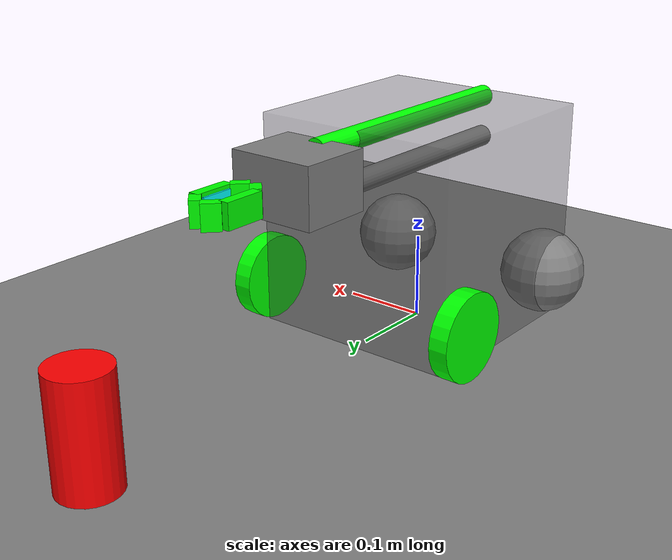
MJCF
<mujoco model="robot">
    <option timestep="0.01" gravity="0 0 -9.81"/>

    <worldbody>
        <!-- Light Source -->
        <light diffuse="0.5 0.5 0.5" pos="0 0 3" dir="0 0 -1"/>

        <!-- Ground Plane -->
        <geom name="ground" type="plane" size="10 10 0.1" contype="1" conaffinity="7" />

        <!-- Main box (chassis) -->
        <!-- pos=0 0 5.125 -->
        <body name="chassis" pos="0 0 0.130175">
            <joint type="free"/> <!-- allow free motion around the plane -->

            <!-- size=5 5 5.125 mass=4.5 -->
            <geom type="box" size="0.127 0.127 0.127"
                rgba="0.3 0.3 0.3 0.4" mass="7" condim="3" contype="2" conaffinity="9"/>

            <!-- Front Left Wheel -->
            <body name="wheel_fl" pos="-0.1397 0.10795 -0.079375">
                <joint name="joint_fl" type="hinge" axis="-1 0 0" damping="1"/>
                <!-- size=2 .44 fromto=5.06 4.25 -3.125 5.94 4.25 -3.125 -->
                <geom type="cylinder" size="0.0508 0.011176"
                    fromto="0.011176 0 0 -0.011176 0 0"
                    rgba="0 1 0 1" mass="1.125" condim="3" contype="1" conaffinity="1"/>
            </body>

            <!-- Front Right Wheel -->
            <body name="wheel_fr" pos="0.1397 0.10795 -0.079375">
                <joint name="joint_fr" type="hinge" axis="-1 0 0" damping="1"/>
                <geom type="cylinder" size="0.0508 0.011176"
                    fromto="-0.011176 0 0 0.011176 0 0"
                    rgba="0 1 0 1" mass="1.125" condim="3" contype="1" conaffinity="1"/>
            </body>

            <!-- Rear Left Wheel -->
            <!-- x position has been adjusted to compensate for the ball joint collision -->
            <body name="wheel_rl" pos="-0.11 -0.10795 -0.079375">
                <joint name="joint_rl" type="ball"/>
                <geom type="sphere" size="0.0508"
                    rgba="0.5 0.5 0.5 1" mass="1.125" friction="0 0 0" condim="3" contype="1" conaffinity="1"/>
            </body>

            <!-- Rear Right Wheel -->
            <body name="wheel_rr" pos="0.11 -0.10795 -0.079375">
                <joint name="joint_rr" type="ball"/>
                <geom type="sphere" size="0.0508"
                    rgba="0.5 0.5 0.5 1" mass="1.125" friction="0 0 0" condim="3" contype="1" conaffinity="1"/>
            </body>

            <!-- Top Arm -->
            <body name="arm1" pos="0 0.0254 0.117475">
                <joint name="joint_arm1" type="hinge" axis="1 0 0"
                    pos="0 -0.1397 0" damping="0.5"/>
                <geom type="cylinder" fromto="0 -0.15875 0 0 0.15875 0"
                    size="0.0127 0.15875" rgba="0 1 0 1" mass="0.1" condim="3" contype="2" conaffinity="2"/>

                <!-- Claw -->
                <body name="claw_base" pos="0 0.1863725 -0.0254">
                    <joint name="joint_cb_arm1" type="hinge" axis="1 0 0" pos="0 -0.0339725 0.0254"/>
                    <site name="mate_cb_arm2" pos="0 -0.0339725 -0.0254"/>
                    <site name="virtual_claw_target" pos="0 0.103 0"/>
                    <geom type="box" size="0.0508 0.0422275 0.033655" rgba="0.5 0.5 0.5 1" mass="0.5"
                        condim="3" contype="4" conaffinity="5"/>

                    <!-- Left effector -->
                    <body name="left_claw" pos="-0.035 0.0356235 0">
                        <joint name="joint_left_claw" type="hinge" axis="0 0 -1" range="-90 0" frictionloss="0.1"/>
                        <geom type="box" size="0.006 0.01 0.014" pos="0.024638 0.0373 0" euler="0 0 45" rgba="0 1 0 1" mass="0.02" condim="3" contype="2" conaffinity="1"/>
                        <geom type="box" size="0.006 0.023 0.014" pos="0.015638 0.0673 0" rgba="0 1 0 1" mass="0.04" condim="3" contype="2" conaffinity="1"/>
                        <geom type="box" size="0.006 0.01 0.014" pos="0.024638 0.0973 0" euler="0 0 -45" rgba="0 1 0 1" mass="0.02" condim="3" contype="2" conaffinity="1"/>
                        <site name="mate_touch_lc" pos="0.021638 0.0673 0" size="0.002 0.018 0.01" type="box" rgba="0 1 1 1"/>
                    </body>

                    <!-- Right effector -->
                    <body name="right_claw" pos="0.035 0.0356234 0">
                        <joint name="joint_right_claw" type="hinge" axis="0 0 1" frictionloss="0.1"/>
                        <geom type="box" size="0.006 0.01 0.014" pos="-0.024638 0.0373 0" euler="0 0 -45" rgba="0 1 0 1" mass="0.02" condim="3" contype="2" conaffinity="1"/>
                        <geom type="box" size="0.006 0.023 0.014" pos="-0.015638 0.0673 0" rgba="0 1 0 1" mass="0.04" condim="3" contype="2" conaffinity="1"/>
                        <geom type="box" size="0.006 0.01 0.014" pos="-0.024638 0.0973 0" euler="0 0 45" rgba="0 1 0 1" mass="0.02" condim="3" contype="2" conaffinity="1"/>
                        <site name="mate_touch_rc" pos="-0.021638 0.0673 0" size="0.002 0.018 0.01" type="box" rgba="0 1 1 1"/>
                    </body>
                </body>
            </body>

            <!-- Bottom Arm -->
            <body name="arm2" pos="0 0.0254 0.066675">
                <joint name="joint_arm2" type="hinge" axis="1 0 0"
                    pos="0 -0.1397 0"/>
                <site name="mate_arm2_cb" pos="0 0.1524 0"/>
                <geom type="cylinder" fromto="0 -0.15875 0 0 0.15875 0"
                    size="0.0127 0.15875" rgba="0.5 0.5 0.5 1" mass="0.1" condim="3" contype="2" conaffinity="2"/>
            </body>
        </body>

        <body name="can1" pos="0 0.5 0.065">
            <joint type="free"/>
            <geom type="cylinder"
                size="0.033 0.06135"
                rgba="1 0 0 1"
                mass="0.4"
                condim="3" contype="1" conaffinity="1"/>
        </body>

    </worldbody>

    <equality>
        <connect name="joint_arm2_cb"
            site1="mate_arm2_cb"
            site2="mate_cb_arm2"/>
    </equality>

    <equality>
        <joint name="claw_sync"
            joint1="joint_left_claw"
            joint2="joint_right_claw"
            polycoef="0 1"/>
    </equality>

    <!-- Actuators to control wheel rotation -->
    <actuator>
        <motor name="motor_fl" joint="joint_fl"
            gear="2.1"
            ctrlrange="-1 1" ctrllimited="true"/>
        <motor name="motor_fr" joint="joint_fr"
            gear="2.1"
            ctrlrange="-1 1" ctrllimited="true"/>
        <motor name="motor_arm1" joint="joint_arm1"
            gear="14.7"
            ctrlrange="-1 1" ctrllimited="true"
            forcelimited="true" forcerange="-14.7 14.7"/>
        <position name="motor_claw" joint="joint_left_claw"
            ctrlrange="-1 1" ctrllimited="true"/>
    </actuator>

    <!-- Sensors -->
    <sensor>
        <jointpos joint="joint_fl" noise="0.05" />
        <jointvel joint="joint_fl" noise="0.1" />
        <jointpos joint="joint_fr" noise="0.05" />
        <jointvel joint="joint_fr" noise="0.1" />
        <jointpos joint="joint_arm1" noise="0.05" />
        <jointvel joint="joint_arm1" noise="0.1" />
        <jointpos joint="joint_left_claw" noise="0.05" />
        <jointvel joint="joint_left_claw" noise="0.1" />
        <touch name="touch_lc" site="mate_touch_lc" noise="0"/>
        <touch name="touch_rc" site="mate_touch_rc" noise="0"/>
    </sensor>
</mujoco>
